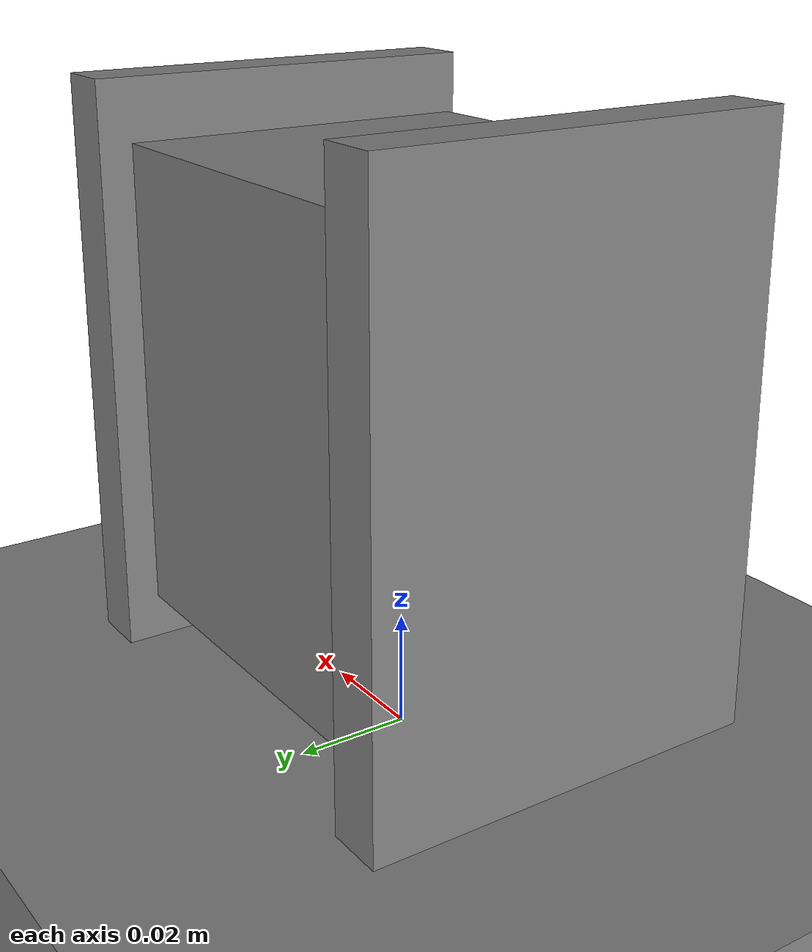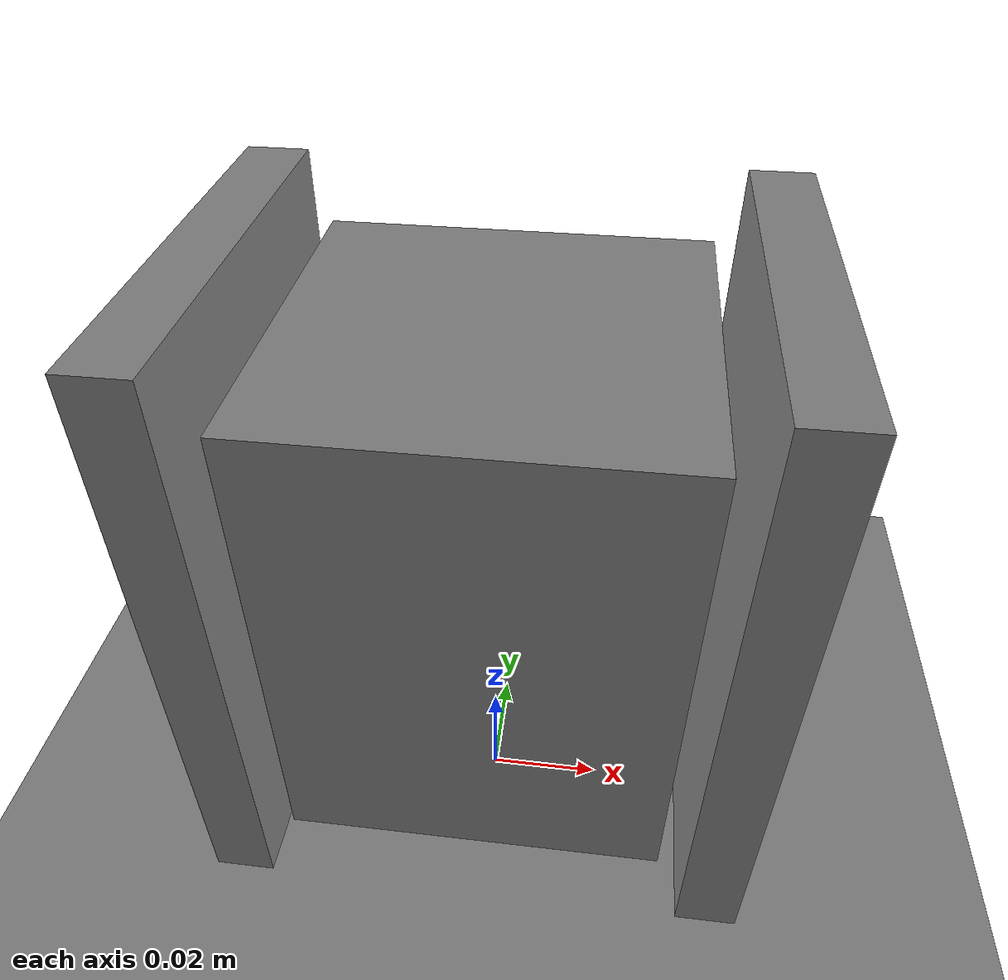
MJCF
<mujoco model="sim_004">
  <option gravity="0 0 -9.81" integrator="RK4" timestep="0.002"/>
  <worldbody>
    <body name="table" pos="0 0 0">
      <geom name="table_top" type="box" size="0.20 0.20 0.01" pos="0 0 0"/>
      <body name="opening_left" pos="-0.04000000 0 0.06"><geom type="box" size="0.00500000 0.03500000 0.05"/></body>
      <body name="opening_right" pos="0.04000000 0 0.06"><geom type="box" size="0.00500000 0.03500000 0.05"/></body>
    </body>
    <body name="object" pos="0 0 0.06000000" quat="1 0 0 0">
      <freejoint/>
      <geom name="object_geom" type="box" size="0.03100000 0.03100000 0.04000000"
            mass="0.52000000" friction="0.6 0.01 0.001"/>
    </body>
  </worldbody>
</mujoco>
